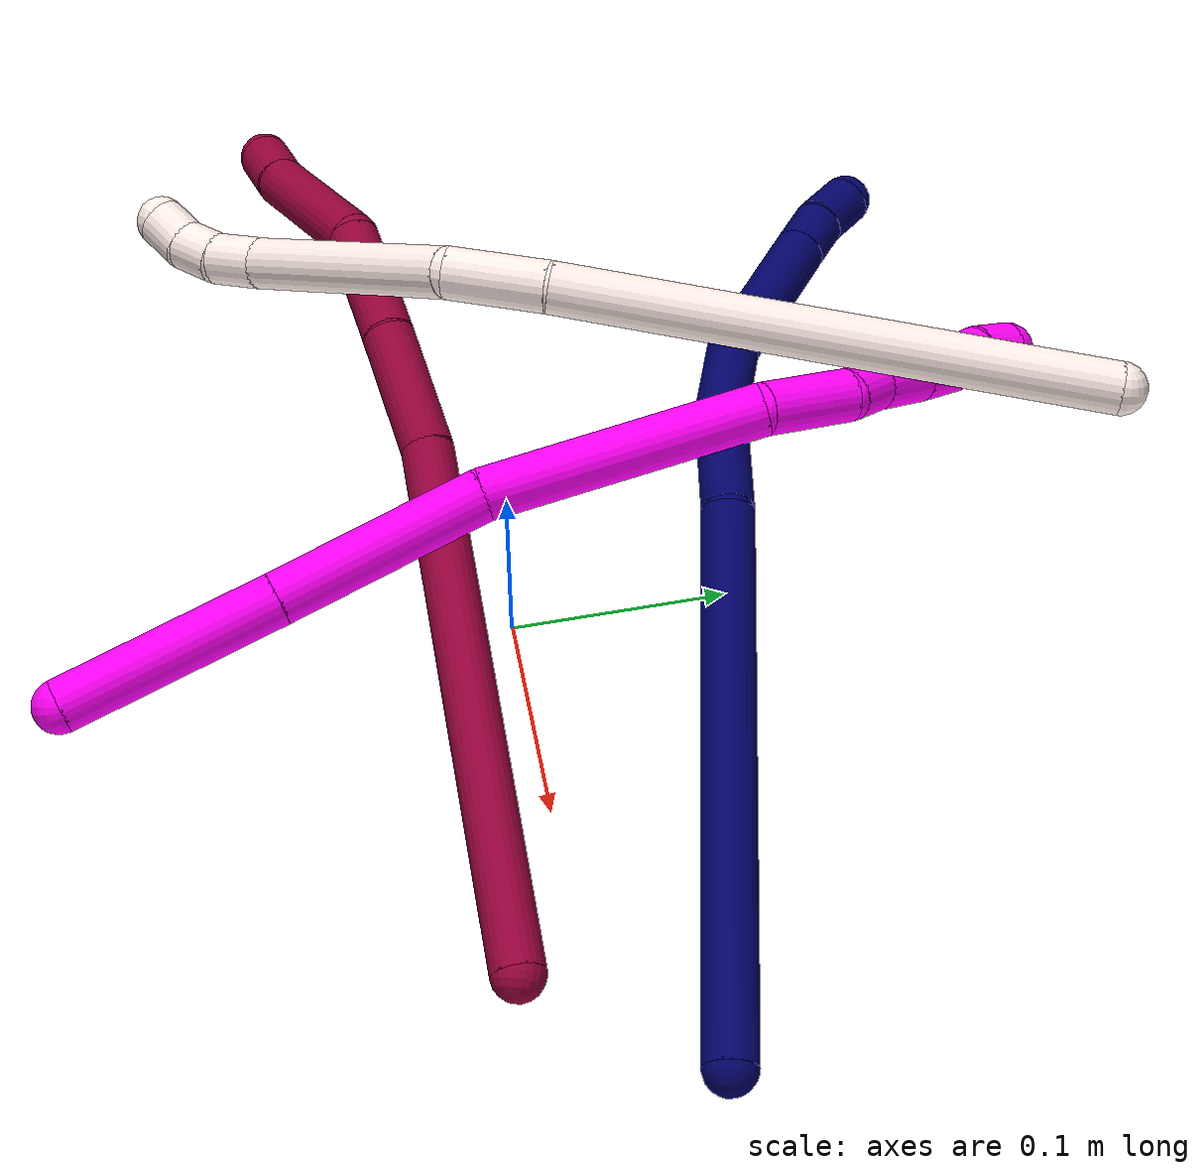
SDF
<sdf version="1.7">
 <world name="default">
  <model name="photoneo_s_sensor">
   <static>1</static>
   <pose>0 0 2 1.57079 1.57079 3.14159</pose>
   <link name="link">
    <inertial><mass>0.1</mass></inertial>
    <sensor name="sensor" type="depth">
     <update_rate>30</update_rate>
     <camera>
      <horizontal_fov>1.22</horizontal_fov>
      <image><width>1920</width><height>1200</height><format>B8G8R8</format></image>
      <clip><near>0.1</near><far>4</far></clip>
      <depth_camera><output>points</output></depth_camera>
     </camera>
     <plugin name="camera_plugin" filename="libgazebo_ros_depth_camera.so">
      <baseline>0.2</baseline>
      <alwaysOn>1</alwaysOn>
      <updateRate>0.0</updateRate>
      <cameraName>camera_ir</cameraName>
      <imageTopicName>/camera/color/image_raw</imageTopicName>
      <cameraInfoTopicName>/camera/color/camera_info</cameraInfoTopicName>
      <depthImageTopicName>/camera/depth/image_raw</depthImageTopicName>
      <depthImageCameraInfoTopicName>/camera/depth/camera_info</depthImageCameraInfoTopicName>
      <pointCloudTopicName>/camera/depth/points</pointCloudTopicName>
      <frameName>fr_optical</frameName>
      <pointCloudCutoff>0.1</pointCloudCutoff>
      <pointCloudCutoffMax>2.0</pointCloudCutoffMax>
      <distortionK1>0</distortionK1>
      <distortionK2>0</distortionK2>
      <distortionK3>0</distortionK3>
      <distortionT1>0</distortionT1>
      <distortionT2>0</distortionT2>
      <CxPrime>0</CxPrime>
      <Cx>0</Cx>
      <Cy>0</Cy>
      <focalLength>0</focalLength>
      <hackBaseline>0</hackBaseline>
     </plugin>
    </sensor>
   </link>
  </model>
  <model name="bin">
   <static>1</static>
   <link name="bottom">
    <collision name="collision-bottom">
     <pose>0 0 -0.01 0 -0 0</pose>
     <geometry><box><size>0.8 0.6 0.02</size></box></geometry>
     <surface>
      <friction><ode><mu>100</mu><mu2>100</mu2></ode></friction>
      <contact><collide_bitmask>65535</collide_bitmask></contact>
     </surface>
    </collision>
   </link>
   <link name="west_wall">
    <collision name="collision-west_wall">
     <pose>-0.41 0 0.1 0 -0 0</pose>
     <geometry><box><size>0.02 0.6 0.2</size></box></geometry>
     <surface>
      <friction><ode><mu>100</mu><mu2>100</mu2></ode></friction>
      <contact><collide_bitmask>65535</collide_bitmask></contact>
     </surface>
    </collision>
   </link>
   <link name="east_wall">
    <collision name="collision-east_wall">
     <pose>0.41 0 0.1 0 -0 0</pose>
     <geometry><box><size>0.02 0.6 0.2</size></box></geometry>
     <surface>
      <friction><ode><mu>100</mu><mu2>100</mu2></ode></friction>
      <contact><collide_bitmask>65535</collide_bitmask></contact>
     </surface>
    </collision>
   </link>
   <link name="south_wall">
    <collision name="collision-south_wall">
     <pose>0 -0.31 0.1 0 -0 0</pose>
     <geometry><box><size>0.8 0.02 0.2</size></box></geometry>
     <surface>
      <friction><ode><mu>100</mu><mu2>100</mu2></ode></friction>
      <contact><collide_bitmask>65535</collide_bitmask></contact>
     </surface>
    </collision>
   </link>
   <link name="north_wall">
    <collision name="collision-north_wall">
     <pose>0 0.31 0.1 0 -0 0</pose>
     <geometry><box><size>0.8 0.02 0.2</size></box></geometry>
     <surface>
      <friction><ode><mu>100</mu><mu2>100</mu2></ode></friction>
      <contact><collide_bitmask>65535</collide_bitmask></contact>
     </surface>
    </collision>
   </link>
  </model>
  <model name="7">
   <static>0</static>
   <link name="7">
    <collision name="collision-cylinder-e_1_1_4">
     <pose>-0.022581 0.004666 0.130381 -0.03577 -0.171382 0.003073</pose>
     <geometry><cylinder><radius>0.0125</radius><length>0.264809</length></cylinder></geometry>
     <surface>
      <friction><ode><mu>1.16</mu><mu2>1.16</mu2><slip1>0</slip1><slip2>0</slip2></ode></friction>
      <contact><ode><kp>1e+06</kp><kd>1</kd><max_vel>0</max_vel><min_depth>0.001</min_depth></ode></contact>
     </surface>
    </collision>
    <visual name="visual-cylinder-e_1_1_4">
     <pose>-0.022581 0.004666 0.130381 -0.03577 -0.171382 0.003073</pose>
     <geometry><cylinder><radius>0.0125</radius><length>0.264809</length></cylinder></geometry>
     <material><ambient>0.003922 0 0.403922 1</ambient></material>
    </visual>
    <collision name="collision-cylinder-e_2_4_5">
     <pose>-0.049424 0.017342 0.290177 -0.265886 -0.138911 0.018606</pose>
     <geometry><cylinder><radius>0.0125</radius><length>0.061564</length></cylinder></geometry>
     <surface>
      <friction><ode><mu>1.16</mu><mu2>1.16</mu2><slip1>0</slip1><slip2>0</slip2></ode></friction>
      <contact><ode><kp>1e+06</kp><kd>1</kd><max_vel>0</max_vel><min_depth>0.001</min_depth></ode></contact>
     </surface>
    </collision>
    <visual name="visual-cylinder-e_2_4_5">
     <pose>-0.049424 0.017342 0.290177 -0.265886 -0.138911 0.018606</pose>
     <geometry><cylinder><radius>0.0125</radius><length>0.061564</length></cylinder></geometry>
     <material><ambient>0.003922 0 0.403922 1</ambient></material>
    </visual>
    <collision name="collision-cylinder-e_3_5_6">
     <pose>-0.053088 0.02857 0.340343 -0.153833 0.028479 -0.002195</pose>
     <geometry><cylinder><radius>0.0125</radius><length>0.042018</length></cylinder></geometry>
     <surface>
      <friction><ode><mu>1.16</mu><mu2>1.16</mu2><slip1>0</slip1><slip2>0</slip2></ode></friction>
      <contact><ode><kp>1e+06</kp><kd>1</kd><max_vel>0</max_vel><min_depth>0.001</min_depth></ode></contact>
     </surface>
    </collision>
    <visual name="visual-cylinder-e_3_5_6">
     <pose>-0.053088 0.02857 0.340343 -0.153833 0.028479 -0.002195</pose>
     <geometry><cylinder><radius>0.0125</radius><length>0.042018</length></cylinder></geometry>
     <material><ambient>0.003922 0 0.403922 1</ambient></material>
    </visual>
    <collision name="collision-cylinder-e_4_6_7">
     <pose>-0.039059 0.038814 0.400379 -0.176974 0.324648 -0.029056</pose>
     <geometry><cylinder><radius>0.0125</radius><length>0.084211</length></cylinder></geometry>
     <surface>
      <friction><ode><mu>1.16</mu><mu2>1.16</mu2><slip1>0</slip1><slip2>0</slip2></ode></friction>
      <contact><ode><kp>1e+06</kp><kd>1</kd><max_vel>0</max_vel><min_depth>0.001</min_depth></ode></contact>
     </surface>
    </collision>
    <visual name="visual-cylinder-e_4_6_7">
     <pose>-0.039059 0.038814 0.400379 -0.176974 0.324648 -0.029056</pose>
     <geometry><cylinder><radius>0.0125</radius><length>0.084211</length></cylinder></geometry>
     <material><ambient>0.003922 0 0.403922 1</ambient></material>
    </visual>
    <collision name="collision-cylinder-e_5_7_8">
     <pose>-0.021879 0.046618 0.450275 -0.073283 0.338717 -0.012537</pose>
     <geometry><cylinder><radius>0.0125</radius><length>0.022566</length></cylinder></geometry>
     <surface>
      <friction><ode><mu>1.16</mu><mu2>1.16</mu2><slip1>0</slip1><slip2>0</slip2></ode></friction>
      <contact><ode><kp>1e+06</kp><kd>1</kd><max_vel>0</max_vel><min_depth>0.001</min_depth></ode></contact>
     </surface>
    </collision>
    <visual name="visual-cylinder-e_5_7_8">
     <pose>-0.021879 0.046618 0.450275 -0.073283 0.338717 -0.012537</pose>
     <geometry><cylinder><radius>0.0125</radius><length>0.022566</length></cylinder></geometry>
     <material><ambient>0.003922 0 0.403922 1</ambient></material>
    </visual>
    <collision name="collision-cylinder-e_6_8_2">
     <pose>-0.011972 0.048908 0.471563 -0.140535 0.518963 -0.037365</pose>
     <geometry><cylinder><radius>0.0125</radius><length>0.024832</length></cylinder></geometry>
     <surface>
      <friction><ode><mu>1.16</mu><mu2>1.16</mu2><slip1>0</slip1><slip2>0</slip2></ode></friction>
      <contact><ode><kp>1e+06</kp><kd>1</kd><max_vel>0</max_vel><min_depth>0.001</min_depth></ode></contact>
     </surface>
    </collision>
    <visual name="visual-cylinder-e_6_8_2">
     <pose>-0.011972 0.048908 0.471563 -0.140535 0.518963 -0.037365</pose>
     <geometry><cylinder><radius>0.0125</radius><length>0.024832</length></cylinder></geometry>
     <material><ambient>0.003922 0 0.403922 1</ambient></material>
    </visual>
    <collision name="collision-sphere-2">
     <pose>-0.005814 0.050418 0.482238 0 -0 0</pose>
     <geometry><sphere><radius>0.0125</radius></sphere></geometry>
     <surface>
      <friction><ode><mu>1.16</mu><mu2>1.16</mu2><slip1>0</slip1><slip2>0</slip2></ode></friction>
      <contact><ode><kp>1e+06</kp><kd>1</kd><max_vel>0</max_vel><min_depth>0.001</min_depth></ode></contact>
     </surface>
    </collision>
    <visual name="visual-sphere-2">
     <pose>-0.005814 0.050418 0.482238 0 -0 0</pose>
     <geometry><sphere><radius>0.0125</radius></sphere></geometry>
     <material><ambient>0.003922 0 0.403922 1</ambient></material>
    </visual>
    <collision name="collision-sphere-4">
     <pose>-0.045162 0.009331 0.260763 0 -0 0</pose>
     <geometry><sphere><radius>0.0125</radius></sphere></geometry>
     <surface>
      <friction><ode><mu>1.16</mu><mu2>1.16</mu2><slip1>0</slip1><slip2>0</slip2></ode></friction>
      <contact><ode><kp>1e+06</kp><kd>1</kd><max_vel>0</max_vel><min_depth>0.001</min_depth></ode></contact>
     </surface>
    </collision>
    <visual name="visual-sphere-4">
     <pose>-0.045162 0.009331 0.260763 0 -0 0</pose>
     <geometry><sphere><radius>0.0125</radius></sphere></geometry>
     <material><ambient>0.003922 0 0.403922 1</ambient></material>
    </visual>
    <collision name="collision-sphere-1">
     <geometry><sphere><radius>0.0125</radius></sphere></geometry>
     <surface>
      <friction><ode><mu>1.16</mu><mu2>1.16</mu2><slip1>0</slip1><slip2>0</slip2></ode></friction>
      <contact><ode><kp>1e+06</kp><kd>1</kd><max_vel>0</max_vel><min_depth>0.001</min_depth></ode></contact>
     </surface>
    </collision>
    <visual name="visual-sphere-1">
     <geometry><sphere><radius>0.0125</radius></sphere></geometry>
     <material><ambient>0.003922 0 0.403922 1</ambient></material>
    </visual>
    <collision name="collision-sphere-8">
     <pose>-0.01813 0.047397 0.460888 0 -0 0</pose>
     <geometry><sphere><radius>0.0125</radius></sphere></geometry>
     <surface>
      <friction><ode><mu>1.16</mu><mu2>1.16</mu2><slip1>0</slip1><slip2>0</slip2></ode></friction>
      <contact><ode><kp>1e+06</kp><kd>1</kd><max_vel>0</max_vel><min_depth>0.001</min_depth></ode></contact>
     </surface>
    </collision>
    <visual name="visual-sphere-8">
     <pose>-0.01813 0.047397 0.460888 0 -0 0</pose>
     <geometry><sphere><radius>0.0125</radius></sphere></geometry>
     <material><ambient>0.003922 0 0.403922 1</ambient></material>
    </visual>
    <collision name="collision-sphere-5">
     <pose>-0.053686 0.025352 0.319591 0 -0 0</pose>
     <geometry><sphere><radius>0.0125</radius></sphere></geometry>
     <surface>
      <friction><ode><mu>1.16</mu><mu2>1.16</mu2><slip1>0</slip1><slip2>0</slip2></ode></friction>
      <contact><ode><kp>1e+06</kp><kd>1</kd><max_vel>0</max_vel><min_depth>0.001</min_depth></ode></contact>
     </surface>
    </collision>
    <visual name="visual-sphere-5">
     <pose>-0.053686 0.025352 0.319591 0 -0 0</pose>
     <geometry><sphere><radius>0.0125</radius></sphere></geometry>
     <material><ambient>0.003922 0 0.403922 1</ambient></material>
    </visual>
    <collision name="collision-sphere-6">
     <pose>-0.05249 0.031788 0.361096 0 -0 0</pose>
     <geometry><sphere><radius>0.0125</radius></sphere></geometry>
     <surface>
      <friction><ode><mu>1.16</mu><mu2>1.16</mu2><slip1>0</slip1><slip2>0</slip2></ode></friction>
      <contact><ode><kp>1e+06</kp><kd>1</kd><max_vel>0</max_vel><min_depth>0.001</min_depth></ode></contact>
     </surface>
    </collision>
    <visual name="visual-sphere-6">
     <pose>-0.05249 0.031788 0.361096 0 -0 0</pose>
     <geometry><sphere><radius>0.0125</radius></sphere></geometry>
     <material><ambient>0.003922 0 0.403922 1</ambient></material>
    </visual>
    <collision name="collision-sphere-7">
     <pose>-0.025629 0.045839 0.439661 0 -0 0</pose>
     <geometry><sphere><radius>0.0125</radius></sphere></geometry>
     <surface>
      <friction><ode><mu>1.16</mu><mu2>1.16</mu2><slip1>0</slip1><slip2>0</slip2></ode></friction>
      <contact><ode><kp>1e+06</kp><kd>1</kd><max_vel>0</max_vel><min_depth>0.001</min_depth></ode></contact>
     </surface>
    </collision>
    <visual name="visual-sphere-7">
     <pose>-0.025629 0.045839 0.439661 0 -0 0</pose>
     <geometry><sphere><radius>0.0125</radius></sphere></geometry>
     <material><ambient>0.003922 0 0.403922 1</ambient></material>
    </visual>
    <inertial>
     <pose>-0.030666 0.018077 0.244556 0 -0 0</pose>
     <mass>0.5</mass>
     <inertia>
      <ixx>0.001621</ixx>
      <ixy>0</ixy>
      <ixz>0</ixz>
      <iyy>0.001649</iyy>
      <iyz>0</iyz>
      <izz>0.000216</izz>
     </inertia>
    </inertial>
   </link>
   <pose>0.240925 0.050826 0.011473 -1.46885 0.333083 1.225</pose>
  </model>
  <model name="8">
   <static>0</static>
   <link name="8">
    <collision name="collision-cylinder-e_1_1_4">
     <pose>-0.022547 -0.038368 0.12486 0.298127 -0.170928 -0.025731</pose>
     <geometry><cylinder><radius>0.0125</radius><length>0.265107</length></cylinder></geometry>
     <surface>
      <friction><ode><mu>1.16</mu><mu2>1.16</mu2><slip1>0</slip1><slip2>0</slip2></ode></friction>
      <contact><ode><kp>1e+06</kp><kd>1</kd><max_vel>0</max_vel><min_depth>0.001</min_depth></ode></contact>
     </surface>
    </collision>
    <visual name="visual-cylinder-e_1_1_4">
     <pose>-0.022547 -0.038368 0.12486 0.298127 -0.170928 -0.025731</pose>
     <geometry><cylinder><radius>0.0125</radius><length>0.265107</length></cylinder></geometry>
     <material><ambient>0.584314 0 0.227451 1</ambient></material>
    </visual>
    <collision name="collision-cylinder-e_2_4_5">
     <pose>-0.048836 -0.090546 0.27923 0.437727 -0.114366 -0.025464</pose>
     <geometry><cylinder><radius>0.0125</radius><length>0.065592</length></cylinder></geometry>
     <surface>
      <friction><ode><mu>1.16</mu><mu2>1.16</mu2><slip1>0</slip1><slip2>0</slip2></ode></friction>
      <contact><ode><kp>1e+06</kp><kd>1</kd><max_vel>0</max_vel><min_depth>0.001</min_depth></ode></contact>
     </surface>
    </collision>
    <visual name="visual-cylinder-e_2_4_5">
     <pose>-0.048836 -0.090546 0.27923 0.437727 -0.114366 -0.025464</pose>
     <geometry><cylinder><radius>0.0125</radius><length>0.065592</length></cylinder></geometry>
     <material><ambient>0.584314 0 0.227451 1</ambient></material>
    </visual>
    <collision name="collision-cylinder-e_3_5_6">
     <pose>-0.060138 -0.117829 0.336948 0.445561 -0.237251 -0.053987</pose>
     <geometry><cylinder><radius>0.0125</radius><length>0.064322</length></cylinder></geometry>
     <surface>
      <friction><ode><mu>1.16</mu><mu2>1.16</mu2><slip1>0</slip1><slip2>0</slip2></ode></friction>
      <contact><ode><kp>1e+06</kp><kd>1</kd><max_vel>0</max_vel><min_depth>0.001</min_depth></ode></contact>
     </surface>
    </collision>
    <visual name="visual-cylinder-e_3_5_6">
     <pose>-0.060138 -0.117829 0.336948 0.445561 -0.237251 -0.053987</pose>
     <geometry><cylinder><radius>0.0125</radius><length>0.064322</length></cylinder></geometry>
     <material><ambient>0.584314 0 0.227451 1</ambient></material>
    </visual>
    <collision name="collision-cylinder-e_4_6_7">
     <pose>-0.087359 -0.155439 0.387848 0.816274 -0.535611 -0.236204</pose>
     <geometry><cylinder><radius>0.0125</radius><length>0.07705</length></cylinder></geometry>
     <surface>
      <friction><ode><mu>1.16</mu><mu2>1.16</mu2><slip1>0</slip1><slip2>0</slip2></ode></friction>
      <contact><ode><kp>1e+06</kp><kd>1</kd><max_vel>0</max_vel><min_depth>0.001</min_depth></ode></contact>
     </surface>
    </collision>
    <visual name="visual-cylinder-e_4_6_7">
     <pose>-0.087359 -0.155439 0.387848 0.816274 -0.535611 -0.236204</pose>
     <geometry><cylinder><radius>0.0125</radius><length>0.07705</length></cylinder></geometry>
     <material><ambient>0.584314 0 0.227451 1</ambient></material>
    </visual>
    <collision name="collision-cylinder-e_5_7_2">
     <pose>-0.11431 -0.186329 0.420352 0.602687 -0.54925 -0.174691</pose>
     <geometry><cylinder><radius>0.0125</radius><length>0.027929</length></cylinder></geometry>
     <surface>
      <friction><ode><mu>1.16</mu><mu2>1.16</mu2><slip1>0</slip1><slip2>0</slip2></ode></friction>
      <contact><ode><kp>1e+06</kp><kd>1</kd><max_vel>0</max_vel><min_depth>0.001</min_depth></ode></contact>
     </surface>
    </collision>
    <visual name="visual-cylinder-e_5_7_2">
     <pose>-0.11431 -0.186329 0.420352 0.602687 -0.54925 -0.174691</pose>
     <geometry><cylinder><radius>0.0125</radius><length>0.027929</length></cylinder></geometry>
     <material><ambient>0.584314 0 0.227451 1</ambient></material>
    </visual>
    <collision name="collision-sphere-2">
     <pose>-0.121601 -0.193081 0.430164 0 -0 0</pose>
     <geometry><sphere><radius>0.0125</radius></sphere></geometry>
     <surface>
      <friction><ode><mu>1.16</mu><mu2>1.16</mu2><slip1>0</slip1><slip2>0</slip2></ode></friction>
      <contact><ode><kp>1e+06</kp><kd>1</kd><max_vel>0</max_vel><min_depth>0.001</min_depth></ode></contact>
     </surface>
    </collision>
    <visual name="visual-sphere-2">
     <pose>-0.121601 -0.193081 0.430164 0 -0 0</pose>
     <geometry><sphere><radius>0.0125</radius></sphere></geometry>
     <material><ambient>0.584314 0 0.227451 1</ambient></material>
    </visual>
    <collision name="collision-sphere-7">
     <pose>-0.10702 -0.179578 0.41054 0 -0 0</pose>
     <geometry><sphere><radius>0.0125</radius></sphere></geometry>
     <surface>
      <friction><ode><mu>1.16</mu><mu2>1.16</mu2><slip1>0</slip1><slip2>0</slip2></ode></friction>
      <contact><ode><kp>1e+06</kp><kd>1</kd><max_vel>0</max_vel><min_depth>0.001</min_depth></ode></contact>
     </surface>
    </collision>
    <visual name="visual-sphere-7">
     <pose>-0.10702 -0.179578 0.41054 0 -0 0</pose>
     <geometry><sphere><radius>0.0125</radius></sphere></geometry>
     <material><ambient>0.584314 0 0.227451 1</ambient></material>
    </visual>
    <collision name="collision-sphere-6">
     <pose>-0.067697 -0.131301 0.365156 0 -0 0</pose>
     <geometry><sphere><radius>0.0125</radius></sphere></geometry>
     <surface>
      <friction><ode><mu>1.16</mu><mu2>1.16</mu2><slip1>0</slip1><slip2>0</slip2></ode></friction>
      <contact><ode><kp>1e+06</kp><kd>1</kd><max_vel>0</max_vel><min_depth>0.001</min_depth></ode></contact>
     </surface>
    </collision>
    <visual name="visual-sphere-6">
     <pose>-0.067697 -0.131301 0.365156 0 -0 0</pose>
     <geometry><sphere><radius>0.0125</radius></sphere></geometry>
     <material><ambient>0.584314 0 0.227451 1</ambient></material>
    </visual>
    <collision name="collision-sphere-5">
     <pose>-0.052579 -0.104357 0.30874 0 -0 0</pose>
     <geometry><sphere><radius>0.0125</radius></sphere></geometry>
     <surface>
      <friction><ode><mu>1.16</mu><mu2>1.16</mu2><slip1>0</slip1><slip2>0</slip2></ode></friction>
      <contact><ode><kp>1e+06</kp><kd>1</kd><max_vel>0</max_vel><min_depth>0.001</min_depth></ode></contact>
     </surface>
    </collision>
    <visual name="visual-sphere-5">
     <pose>-0.052579 -0.104357 0.30874 0 -0 0</pose>
     <geometry><sphere><radius>0.0125</radius></sphere></geometry>
     <material><ambient>0.584314 0 0.227451 1</ambient></material>
    </visual>
    <collision name="collision-sphere-1">
     <geometry><sphere><radius>0.0125</radius></sphere></geometry>
     <surface>
      <friction><ode><mu>1.16</mu><mu2>1.16</mu2><slip1>0</slip1><slip2>0</slip2></ode></friction>
      <contact><ode><kp>1e+06</kp><kd>1</kd><max_vel>0</max_vel><min_depth>0.001</min_depth></ode></contact>
     </surface>
    </collision>
    <visual name="visual-sphere-1">
     <geometry><sphere><radius>0.0125</radius></sphere></geometry>
     <material><ambient>0.584314 0 0.227451 1</ambient></material>
    </visual>
    <collision name="collision-sphere-4">
     <pose>-0.045094 -0.076735 0.24972 0 -0 0</pose>
     <geometry><sphere><radius>0.0125</radius></sphere></geometry>
     <surface>
      <friction><ode><mu>1.16</mu><mu2>1.16</mu2><slip1>0</slip1><slip2>0</slip2></ode></friction>
      <contact><ode><kp>1e+06</kp><kd>1</kd><max_vel>0</max_vel><min_depth>0.001</min_depth></ode></contact>
     </surface>
    </collision>
    <visual name="visual-sphere-4">
     <pose>-0.045094 -0.076735 0.24972 0 -0 0</pose>
     <geometry><sphere><radius>0.0125</radius></sphere></geometry>
     <material><ambient>0.584314 0 0.227451 1</ambient></material>
    </visual>
    <inertial>
     <pose>-0.045945 -0.08174 0.229427 0 -0 0</pose>
     <mass>0.5</mass>
     <inertia>
      <ixx>0.001567</ixx>
      <ixy>0</ixy>
      <ixz>0</ixz>
      <iyy>0.00151</iyy>
      <iyz>0</iyz>
      <izz>0.000832</izz>
     </inertia>
    </inertial>
   </link>
   <pose>0.182317 -0.028668 0.012337 0.027823 -1.2938 -0.33468</pose>
  </model>
  <model name="10">
   <static>0</static>
   <link name="10">
    <collision name="collision-cylinder-e_1_1_4">
     <pose>-0.033087 0.026046 0.032673 -0.673016 -0.669751 0.242265</pose>
     <geometry><cylinder><radius>0.0125</radius><length>0.106596</length></cylinder></geometry>
     <surface>
      <friction><ode><mu>1.16</mu><mu2>1.16</mu2><slip1>0</slip1><slip2>0</slip2></ode></friction>
      <contact><ode><kp>1e+06</kp><kd>1</kd><max_vel>0</max_vel><min_depth>0.001</min_depth></ode></contact>
     </surface>
    </collision>
    <visual name="visual-cylinder-e_1_1_4">
     <pose>-0.033087 0.026046 0.032673 -0.673016 -0.669751 0.242265</pose>
     <geometry><cylinder><radius>0.0125</radius><length>0.106596</length></cylinder></geometry>
     <material><ambient>1 0 0.964706 1</ambient></material>
    </visual>
    <collision name="collision-cylinder-e_2_4_5">
     <pose>-0.098685 0.076987 0.096694 -0.671165 -0.682115 0.246326</pose>
     <geometry><cylinder><radius>0.0125</radius><length>0.103139</length></cylinder></geometry>
     <surface>
      <friction><ode><mu>1.16</mu><mu2>1.16</mu2><slip1>0</slip1><slip2>0</slip2></ode></friction>
      <contact><ode><kp>1e+06</kp><kd>1</kd><max_vel>0</max_vel><min_depth>0.001</min_depth></ode></contact>
     </surface>
    </collision>
    <visual name="visual-cylinder-e_2_4_5">
     <pose>-0.098685 0.076987 0.096694 -0.671165 -0.682115 0.246326</pose>
     <geometry><cylinder><radius>0.0125</radius><length>0.103139</length></cylinder></geometry>
     <material><ambient>1 0 0.964706 1</ambient></material>
    </visual>
    <collision name="collision-cylinder-e_3_5_6">
     <pose>-0.162875 0.136976 0.175056 -0.641229 -0.495098 0.167458</pose>
     <geometry><cylinder><radius>0.0125</radius><length>0.133349</length></cylinder></geometry>
     <surface>
      <friction><ode><mu>1.16</mu><mu2>1.16</mu2><slip1>0</slip1><slip2>0</slip2></ode></friction>
      <contact><ode><kp>1e+06</kp><kd>1</kd><max_vel>0</max_vel><min_depth>0.001</min_depth></ode></contact>
     </surface>
    </collision>
    <visual name="visual-cylinder-e_3_5_6">
     <pose>-0.162875 0.136976 0.175056 -0.641229 -0.495098 0.167458</pose>
     <geometry><cylinder><radius>0.0125</radius><length>0.133349</length></cylinder></geometry>
     <material><ambient>1 0 0.964706 1</ambient></material>
    </visual>
    <collision name="collision-cylinder-e_4_6_7">
     <pose>-0.204397 0.189963 0.231705 -1.07683 -0.451103 0.2724</pose>
     <geometry><cylinder><radius>0.0125</radius><length>0.045161</length></cylinder></geometry>
     <surface>
      <friction><ode><mu>1.16</mu><mu2>1.16</mu2><slip1>0</slip1><slip2>0</slip2></ode></friction>
      <contact><ode><kp>1e+06</kp><kd>1</kd><max_vel>0</max_vel><min_depth>0.001</min_depth></ode></contact>
     </surface>
    </collision>
    <visual name="visual-cylinder-e_4_6_7">
     <pose>-0.204397 0.189963 0.231705 -1.07683 -0.451103 0.2724</pose>
     <geometry><cylinder><radius>0.0125</radius><length>0.045161</length></cylinder></geometry>
     <material><ambient>1 0 0.964706 1</ambient></material>
    </visual>
    <collision name="collision-cylinder-e_5_7_8">
     <pose>-0.220173 0.216262 0.242297 -1.45748 -0.611406 0.549199</pose>
     <geometry><cylinder><radius>0.0125</radius><length>0.020667</length></cylinder></geometry>
     <surface>
      <friction><ode><mu>1.16</mu><mu2>1.16</mu2><slip1>0</slip1><slip2>0</slip2></ode></friction>
      <contact><ode><kp>1e+06</kp><kd>1</kd><max_vel>0</max_vel><min_depth>0.001</min_depth></ode></contact>
     </surface>
    </collision>
    <visual name="visual-cylinder-e_5_7_8">
     <pose>-0.220173 0.216262 0.242297 -1.45748 -0.611406 0.549199</pose>
     <geometry><cylinder><radius>0.0125</radius><length>0.020667</length></cylinder></geometry>
     <material><ambient>1 0 0.964706 1</ambient></material>
    </visual>
    <collision name="collision-cylinder-e_6_8_9">
     <pose>-0.232782 0.236863 0.246157 -1.33706 -0.489484 0.389535</pose>
     <geometry><cylinder><radius>0.0125</radius><length>0.028405</length></cylinder></geometry>
     <surface>
      <friction><ode><mu>1.16</mu><mu2>1.16</mu2><slip1>0</slip1><slip2>0</slip2></ode></friction>
      <contact><ode><kp>1e+06</kp><kd>1</kd><max_vel>0</max_vel><min_depth>0.001</min_depth></ode></contact>
     </surface>
    </collision>
    <visual name="visual-cylinder-e_6_8_9">
     <pose>-0.232782 0.236863 0.246157 -1.33706 -0.489484 0.389535</pose>
     <geometry><cylinder><radius>0.0125</radius><length>0.028405</length></cylinder></geometry>
     <material><ambient>1 0 0.964706 1</ambient></material>
    </visual>
    <collision name="collision-cylinder-e_7_9_10">
     <pose>-0.245337 0.258171 0.252006 -1.25814 -0.550403 0.405308</pose>
     <geometry><cylinder><radius>0.0125</radius><length>0.022476</length></cylinder></geometry>
     <surface>
      <friction><ode><mu>1.16</mu><mu2>1.16</mu2><slip1>0</slip1><slip2>0</slip2></ode></friction>
      <contact><ode><kp>1e+06</kp><kd>1</kd><max_vel>0</max_vel><min_depth>0.001</min_depth></ode></contact>
     </surface>
    </collision>
    <visual name="visual-cylinder-e_7_9_10">
     <pose>-0.245337 0.258171 0.252006 -1.25814 -0.550403 0.405308</pose>
     <geometry><cylinder><radius>0.0125</radius><length>0.022476</length></cylinder></geometry>
     <material><ambient>1 0 0.964706 1</ambient></material>
    </visual>
    <collision name="collision-cylinder-e_8_10_11">
     <pose>-0.257796 0.274784 0.25646 -1.37247 -0.710498 0.589967</pose>
     <geometry><cylinder><radius>0.0125</radius><length>0.020179</length></cylinder></geometry>
     <surface>
      <friction><ode><mu>1.16</mu><mu2>1.16</mu2><slip1>0</slip1><slip2>0</slip2></ode></friction>
      <contact><ode><kp>1e+06</kp><kd>1</kd><max_vel>0</max_vel><min_depth>0.001</min_depth></ode></contact>
     </surface>
    </collision>
    <visual name="visual-cylinder-e_8_10_11">
     <pose>-0.257796 0.274784 0.25646 -1.37247 -0.710498 0.589967</pose>
     <geometry><cylinder><radius>0.0125</radius><length>0.020179</length></cylinder></geometry>
     <material><ambient>1 0 0.964706 1</ambient></material>
    </visual>
    <collision name="collision-cylinder-e_9_11_2">
     <pose>-0.268555 0.290957 0.260717 -1.26382 -0.430453 0.317378</pose>
     <geometry><cylinder><radius>0.0125</radius><length>0.020028</length></cylinder></geometry>
     <surface>
      <friction><ode><mu>1.16</mu><mu2>1.16</mu2><slip1>0</slip1><slip2>0</slip2></ode></friction>
      <contact><ode><kp>1e+06</kp><kd>1</kd><max_vel>0</max_vel><min_depth>0.001</min_depth></ode></contact>
     </surface>
    </collision>
    <visual name="visual-cylinder-e_9_11_2">
     <pose>-0.268555 0.290957 0.260717 -1.26382 -0.430453 0.317378</pose>
     <geometry><cylinder><radius>0.0125</radius><length>0.020028</length></cylinder></geometry>
     <material><ambient>1 0 0.964706 1</ambient></material>
    </visual>
    <collision name="collision-sphere-2">
     <pose>-0.272734 0.299632 0.263467 0 -0 0</pose>
     <geometry><sphere><radius>0.0125</radius></sphere></geometry>
     <surface>
      <friction><ode><mu>1.16</mu><mu2>1.16</mu2><slip1>0</slip1><slip2>0</slip2></ode></friction>
      <contact><ode><kp>1e+06</kp><kd>1</kd><max_vel>0</max_vel><min_depth>0.001</min_depth></ode></contact>
     </surface>
    </collision>
    <visual name="visual-sphere-2">
     <pose>-0.272734 0.299632 0.263467 0 -0 0</pose>
     <geometry><sphere><radius>0.0125</radius></sphere></geometry>
     <material><ambient>1 0 0.964706 1</ambient></material>
    </visual>
    <collision name="collision-sphere-11">
     <pose>-0.264376 0.282282 0.257967 0 -0 0</pose>
     <geometry><sphere><radius>0.0125</radius></sphere></geometry>
     <surface>
      <friction><ode><mu>1.16</mu><mu2>1.16</mu2><slip1>0</slip1><slip2>0</slip2></ode></friction>
      <contact><ode><kp>1e+06</kp><kd>1</kd><max_vel>0</max_vel><min_depth>0.001</min_depth></ode></contact>
     </surface>
    </collision>
    <visual name="visual-sphere-11">
     <pose>-0.264376 0.282282 0.257967 0 -0 0</pose>
     <geometry><sphere><radius>0.0125</radius></sphere></geometry>
     <material><ambient>1 0 0.964706 1</ambient></material>
    </visual>
    <collision name="collision-sphere-10">
     <pose>-0.251215 0.267285 0.254953 0 -0 0</pose>
     <geometry><sphere><radius>0.0125</radius></sphere></geometry>
     <surface>
      <friction><ode><mu>1.16</mu><mu2>1.16</mu2><slip1>0</slip1><slip2>0</slip2></ode></friction>
      <contact><ode><kp>1e+06</kp><kd>1</kd><max_vel>0</max_vel><min_depth>0.001</min_depth></ode></contact>
     </surface>
    </collision>
    <visual name="visual-sphere-10">
     <pose>-0.251215 0.267285 0.254953 0 -0 0</pose>
     <geometry><sphere><radius>0.0125</radius></sphere></geometry>
     <material><ambient>1 0 0.964706 1</ambient></material>
    </visual>
    <collision name="collision-sphere-9">
     <pose>-0.239459 0.249057 0.24906 0 -0 0</pose>
     <geometry><sphere><radius>0.0125</radius></sphere></geometry>
     <surface>
      <friction><ode><mu>1.16</mu><mu2>1.16</mu2><slip1>0</slip1><slip2>0</slip2></ode></friction>
      <contact><ode><kp>1e+06</kp><kd>1</kd><max_vel>0</max_vel><min_depth>0.001</min_depth></ode></contact>
     </surface>
    </collision>
    <visual name="visual-sphere-9">
     <pose>-0.239459 0.249057 0.24906 0 -0 0</pose>
     <geometry><sphere><radius>0.0125</radius></sphere></geometry>
     <material><ambient>1 0 0.964706 1</ambient></material>
    </visual>
    <collision name="collision-sphere-4">
     <pose>-0.066174 0.052092 0.065346 0 -0 0</pose>
     <geometry><sphere><radius>0.0125</radius></sphere></geometry>
     <surface>
      <friction><ode><mu>1.16</mu><mu2>1.16</mu2><slip1>0</slip1><slip2>0</slip2></ode></friction>
      <contact><ode><kp>1e+06</kp><kd>1</kd><max_vel>0</max_vel><min_depth>0.001</min_depth></ode></contact>
     </surface>
    </collision>
    <visual name="visual-sphere-4">
     <pose>-0.066174 0.052092 0.065346 0 -0 0</pose>
     <geometry><sphere><radius>0.0125</radius></sphere></geometry>
     <material><ambient>1 0 0.964706 1</ambient></material>
    </visual>
    <collision name="collision-sphere-1">
     <geometry><sphere><radius>0.0125</radius></sphere></geometry>
     <surface>
      <friction><ode><mu>1.16</mu><mu2>1.16</mu2><slip1>0</slip1><slip2>0</slip2></ode></friction>
      <contact><ode><kp>1e+06</kp><kd>1</kd><max_vel>0</max_vel><min_depth>0.001</min_depth></ode></contact>
     </surface>
    </collision>
    <visual name="visual-sphere-1">
     <geometry><sphere><radius>0.0125</radius></sphere></geometry>
     <material><ambient>1 0 0.964706 1</ambient></material>
    </visual>
    <collision name="collision-sphere-8">
     <pose>-0.226104 0.22467 0.243254 0 -0 0</pose>
     <geometry><sphere><radius>0.0125</radius></sphere></geometry>
     <surface>
      <friction><ode><mu>1.16</mu><mu2>1.16</mu2><slip1>0</slip1><slip2>0</slip2></ode></friction>
      <contact><ode><kp>1e+06</kp><kd>1</kd><max_vel>0</max_vel><min_depth>0.001</min_depth></ode></contact>
     </surface>
    </collision>
    <visual name="visual-sphere-8">
     <pose>-0.226104 0.22467 0.243254 0 -0 0</pose>
     <geometry><sphere><radius>0.0125</radius></sphere></geometry>
     <material><ambient>1 0 0.964706 1</ambient></material>
    </visual>
    <collision name="collision-sphere-5">
     <pose>-0.131196 0.101882 0.128042 0 -0 0</pose>
     <geometry><sphere><radius>0.0125</radius></sphere></geometry>
     <surface>
      <friction><ode><mu>1.16</mu><mu2>1.16</mu2><slip1>0</slip1><slip2>0</slip2></ode></friction>
      <contact><ode><kp>1e+06</kp><kd>1</kd><max_vel>0</max_vel><min_depth>0.001</min_depth></ode></contact>
     </surface>
    </collision>
    <visual name="visual-sphere-5">
     <pose>-0.131196 0.101882 0.128042 0 -0 0</pose>
     <geometry><sphere><radius>0.0125</radius></sphere></geometry>
     <material><ambient>1 0 0.964706 1</ambient></material>
    </visual>
    <collision name="collision-sphere-6">
     <pose>-0.194553 0.17207 0.22207 0 -0 0</pose>
     <geometry><sphere><radius>0.0125</radius></sphere></geometry>
     <surface>
      <friction><ode><mu>1.16</mu><mu2>1.16</mu2><slip1>0</slip1><slip2>0</slip2></ode></friction>
      <contact><ode><kp>1e+06</kp><kd>1</kd><max_vel>0</max_vel><min_depth>0.001</min_depth></ode></contact>
     </surface>
    </collision>
    <visual name="visual-sphere-6">
     <pose>-0.194553 0.17207 0.22207 0 -0 0</pose>
     <geometry><sphere><radius>0.0125</radius></sphere></geometry>
     <material><ambient>1 0 0.964706 1</ambient></material>
    </visual>
    <collision name="collision-sphere-7">
     <pose>-0.214241 0.207855 0.24134 0 -0 0</pose>
     <geometry><sphere><radius>0.0125</radius></sphere></geometry>
     <surface>
      <friction><ode><mu>1.16</mu><mu2>1.16</mu2><slip1>0</slip1><slip2>0</slip2></ode></friction>
      <contact><ode><kp>1e+06</kp><kd>1</kd><max_vel>0</max_vel><min_depth>0.001</min_depth></ode></contact>
     </surface>
    </collision>
    <visual name="visual-sphere-7">
     <pose>-0.214241 0.207855 0.24134 0 -0 0</pose>
     <geometry><sphere><radius>0.0125</radius></sphere></geometry>
     <material><ambient>1 0 0.964706 1</ambient></material>
    </visual>
    <inertial>
     <pose>-0.143825 0.131868 0.150648 0 -0 0</pose>
     <mass>0.5</mass>
     <inertia>
      <ixx>0.000395</ixx>
      <ixy>0</ixy>
      <ixz>0</ixz>
      <iyy>0.000447</iyy>
      <iyz>0</iyz>
      <izz>3.2e-05</izz>
     </inertia>
    </inertial>
   </link>
   <pose>0.027935 -0.206623 0.03694 -0.986432 0.335009 -0.387833</pose>
  </model>
  <model name="11">
   <static>0</static>
   <link name="11">
    <collision name="collision-cylinder-e_1_1_4">
     <pose>-0.078727 -0.106725 -0.008892 1.65392 -0.633904 -0.684861</pose>
     <geometry><cylinder><radius>0.0125</radius><length>0.265836</length></cylinder></geometry>
     <surface>
      <friction><ode><mu>1.16</mu><mu2>1.16</mu2><slip1>0</slip1><slip2>0</slip2></ode></friction>
      <contact><ode><kp>1e+06</kp><kd>1</kd><max_vel>0</max_vel><min_depth>0.001</min_depth></ode></contact>
     </surface>
    </collision>
    <visual name="visual-cylinder-e_1_1_4">
     <pose>-0.078727 -0.106725 -0.008892 1.65392 -0.633904 -0.684861</pose>
     <geometry><cylinder><radius>0.0125</radius><length>0.265836</length></cylinder></geometry>
     <material><ambient>1 0.933333 0.909804 1</ambient></material>
    </visual>
    <collision name="collision-cylinder-e_2_4_5">
     <pose>-0.169059 -0.235167 -0.017468 1.55629 -0.490741 -0.48395</pose>
     <geometry><cylinder><radius>0.0125</radius><length>0.049249</length></cylinder></geometry>
     <surface>
      <friction><ode><mu>1.16</mu><mu2>1.16</mu2><slip1>0</slip1><slip2>0</slip2></ode></friction>
      <contact><ode><kp>1e+06</kp><kd>1</kd><max_vel>0</max_vel><min_depth>0.001</min_depth></ode></contact>
     </surface>
    </collision>
    <visual name="visual-cylinder-e_2_4_5">
     <pose>-0.169059 -0.235167 -0.017468 1.55629 -0.490741 -0.48395</pose>
     <geometry><cylinder><radius>0.0125</radius><length>0.049249</length></cylinder></geometry>
     <material><ambient>1 0.933333 0.909804 1</ambient></material>
    </visual>
    <collision name="collision-cylinder-e_3_5_6">
     <pose>-0.185564 -0.314798 -0.005173 1.36682 -0.082665 -0.067328</pose>
     <geometry><cylinder><radius>0.0125</radius><length>0.118688</length></cylinder></geometry>
     <surface>
      <friction><ode><mu>1.16</mu><mu2>1.16</mu2><slip1>0</slip1><slip2>0</slip2></ode></friction>
      <contact><ode><kp>1e+06</kp><kd>1</kd><max_vel>0</max_vel><min_depth>0.001</min_depth></ode></contact>
     </surface>
    </collision>
    <visual name="visual-cylinder-e_3_5_6">
     <pose>-0.185564 -0.314798 -0.005173 1.36682 -0.082665 -0.067328</pose>
     <geometry><cylinder><radius>0.0125</radius><length>0.118688</length></cylinder></geometry>
     <material><ambient>1 0.933333 0.909804 1</ambient></material>
    </visual>
    <collision name="collision-cylinder-e_4_6_7">
     <pose>-0.193894 -0.384911 0.008194 1.45756 -0.272475 -0.243549</pose>
     <geometry><cylinder><radius>0.0125</radius><length>0.025493</length></cylinder></geometry>
     <surface>
      <friction><ode><mu>1.16</mu><mu2>1.16</mu2><slip1>0</slip1><slip2>0</slip2></ode></friction>
      <contact><ode><kp>1e+06</kp><kd>1</kd><max_vel>0</max_vel><min_depth>0.001</min_depth></ode></contact>
     </surface>
    </collision>
    <visual name="visual-cylinder-e_4_6_7">
     <pose>-0.193894 -0.384911 0.008194 1.45756 -0.272475 -0.243549</pose>
     <geometry><cylinder><radius>0.0125</radius><length>0.025493</length></cylinder></geometry>
     <material><ambient>1 0.933333 0.909804 1</ambient></material>
    </visual>
    <collision name="collision-cylinder-e_5_7_8">
     <pose>-0.198621 -0.407302 0.008542 1.67238 -0.125856 -0.139297</pose>
     <geometry><cylinder><radius>0.0125</radius><length>0.020655</length></cylinder></geometry>
     <surface>
      <friction><ode><mu>1.16</mu><mu2>1.16</mu2><slip1>0</slip1><slip2>0</slip2></ode></friction>
      <contact><ode><kp>1e+06</kp><kd>1</kd><max_vel>0</max_vel><min_depth>0.001</min_depth></ode></contact>
     </surface>
    </collision>
    <visual name="visual-cylinder-e_5_7_8">
     <pose>-0.198621 -0.407302 0.008542 1.67238 -0.125856 -0.139297</pose>
     <geometry><cylinder><radius>0.0125</radius><length>0.020655</length></cylinder></geometry>
     <material><ambient>1 0.933333 0.909804 1</ambient></material>
    </visual>
    <collision name="collision-cylinder-e_6_8_2">
     <pose>-0.20014 -0.426811 0.00377 1.95189 -0.022267 -0.032908</pose>
     <geometry><cylinder><radius>0.0125</radius><length>0.020079</length></cylinder></geometry>
     <surface>
      <friction><ode><mu>1.16</mu><mu2>1.16</mu2><slip1>0</slip1><slip2>0</slip2></ode></friction>
      <contact><ode><kp>1e+06</kp><kd>1</kd><max_vel>0</max_vel><min_depth>0.001</min_depth></ode></contact>
     </surface>
    </collision>
    <visual name="visual-cylinder-e_6_8_2">
     <pose>-0.20014 -0.426811 0.00377 1.95189 -0.022267 -0.032908</pose>
     <geometry><cylinder><radius>0.0125</radius><length>0.020079</length></cylinder></geometry>
     <material><ambient>1 0.933333 0.909804 1</ambient></material>
    </visual>
    <collision name="collision-sphere-2">
     <pose>-0.200364 -0.436128 3.7e-05 0 -0 0</pose>
     <geometry><sphere><radius>0.0125</radius></sphere></geometry>
     <surface>
      <friction><ode><mu>1.16</mu><mu2>1.16</mu2><slip1>0</slip1><slip2>0</slip2></ode></friction>
      <contact><ode><kp>1e+06</kp><kd>1</kd><max_vel>0</max_vel><min_depth>0.001</min_depth></ode></contact>
     </surface>
    </collision>
    <visual name="visual-sphere-2">
     <pose>-0.200364 -0.436128 3.7e-05 0 -0 0</pose>
     <geometry><sphere><radius>0.0125</radius></sphere></geometry>
     <material><ambient>1 0.933333 0.909804 1</ambient></material>
    </visual>
    <collision name="collision-sphere-4">
     <pose>-0.157453 -0.213451 -0.017783 0 -0 0</pose>
     <geometry><sphere><radius>0.0125</radius></sphere></geometry>
     <surface>
      <friction><ode><mu>1.16</mu><mu2>1.16</mu2><slip1>0</slip1><slip2>0</slip2></ode></friction>
      <contact><ode><kp>1e+06</kp><kd>1</kd><max_vel>0</max_vel><min_depth>0.001</min_depth></ode></contact>
     </surface>
    </collision>
    <visual name="visual-sphere-4">
     <pose>-0.157453 -0.213451 -0.017783 0 -0 0</pose>
     <geometry><sphere><radius>0.0125</radius></sphere></geometry>
     <material><ambient>1 0.933333 0.909804 1</ambient></material>
    </visual>
    <collision name="collision-sphere-1">
     <geometry><sphere><radius>0.0125</radius></sphere></geometry>
     <surface>
      <friction><ode><mu>1.16</mu><mu2>1.16</mu2><slip1>0</slip1><slip2>0</slip2></ode></friction>
      <contact><ode><kp>1e+06</kp><kd>1</kd><max_vel>0</max_vel><min_depth>0.001</min_depth></ode></contact>
     </surface>
    </collision>
    <visual name="visual-sphere-1">
     <geometry><sphere><radius>0.0125</radius></sphere></geometry>
     <material><ambient>1 0.933333 0.909804 1</ambient></material>
    </visual>
    <collision name="collision-sphere-8">
     <pose>-0.199917 -0.417494 0.007503 0 -0 0</pose>
     <geometry><sphere><radius>0.0125</radius></sphere></geometry>
     <surface>
      <friction><ode><mu>1.16</mu><mu2>1.16</mu2><slip1>0</slip1><slip2>0</slip2></ode></friction>
      <contact><ode><kp>1e+06</kp><kd>1</kd><max_vel>0</max_vel><min_depth>0.001</min_depth></ode></contact>
     </surface>
    </collision>
    <visual name="visual-sphere-8">
     <pose>-0.199917 -0.417494 0.007503 0 -0 0</pose>
     <geometry><sphere><radius>0.0125</radius></sphere></geometry>
     <material><ambient>1 0.933333 0.909804 1</ambient></material>
    </visual>
    <collision name="collision-sphere-5">
     <pose>-0.180664 -0.256883 -0.017153 0 -0 0</pose>
     <geometry><sphere><radius>0.0125</radius></sphere></geometry>
     <surface>
      <friction><ode><mu>1.16</mu><mu2>1.16</mu2><slip1>0</slip1><slip2>0</slip2></ode></friction>
      <contact><ode><kp>1e+06</kp><kd>1</kd><max_vel>0</max_vel><min_depth>0.001</min_depth></ode></contact>
     </surface>
    </collision>
    <visual name="visual-sphere-5">
     <pose>-0.180664 -0.256883 -0.017153 0 -0 0</pose>
     <geometry><sphere><radius>0.0125</radius></sphere></geometry>
     <material><ambient>1 0.933333 0.909804 1</ambient></material>
    </visual>
    <collision name="collision-sphere-6">
     <pose>-0.190464 -0.372714 0.006807 0 -0 0</pose>
     <geometry><sphere><radius>0.0125</radius></sphere></geometry>
     <surface>
      <friction><ode><mu>1.16</mu><mu2>1.16</mu2><slip1>0</slip1><slip2>0</slip2></ode></friction>
      <contact><ode><kp>1e+06</kp><kd>1</kd><max_vel>0</max_vel><min_depth>0.001</min_depth></ode></contact>
     </surface>
    </collision>
    <visual name="visual-sphere-6">
     <pose>-0.190464 -0.372714 0.006807 0 -0 0</pose>
     <geometry><sphere><radius>0.0125</radius></sphere></geometry>
     <material><ambient>1 0.933333 0.909804 1</ambient></material>
    </visual>
    <collision name="collision-sphere-7">
     <pose>-0.197324 -0.397109 0.009581 0 -0 0</pose>
     <geometry><sphere><radius>0.0125</radius></sphere></geometry>
     <surface>
      <friction><ode><mu>1.16</mu><mu2>1.16</mu2><slip1>0</slip1><slip2>0</slip2></ode></friction>
      <contact><ode><kp>1e+06</kp><kd>1</kd><max_vel>0</max_vel><min_depth>0.001</min_depth></ode></contact>
     </surface>
    </collision>
    <visual name="visual-sphere-7">
     <pose>-0.197324 -0.397109 0.009581 0 -0 0</pose>
     <geometry><sphere><radius>0.0125</radius></sphere></geometry>
     <material><ambient>1 0.933333 0.909804 1</ambient></material>
    </visual>
    <inertial>
     <pose>-0.128685 -0.208222 -0.006754 0 -0 0</pose>
     <mass>0.5</mass>
     <inertia>
      <ixx>0.000307</ixx>
      <ixy>0</ixy>
      <ixz>0</ixz>
      <iyy>-0.000333</iyy>
      <iyz>0</iyz>
      <izz>0.002373</izz>
     </inertia>
    </inertial>
   </link>
   <pose>-0.02536 0.288501 0.079076 2.78052 0.471453 2.10584</pose>
  </model>
 </world>
</sdf>
